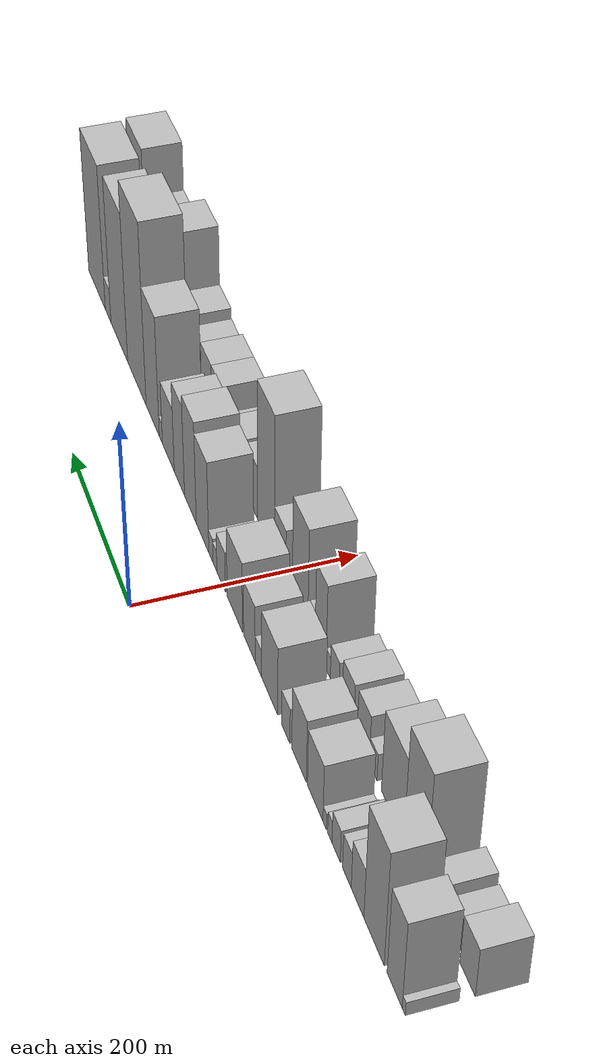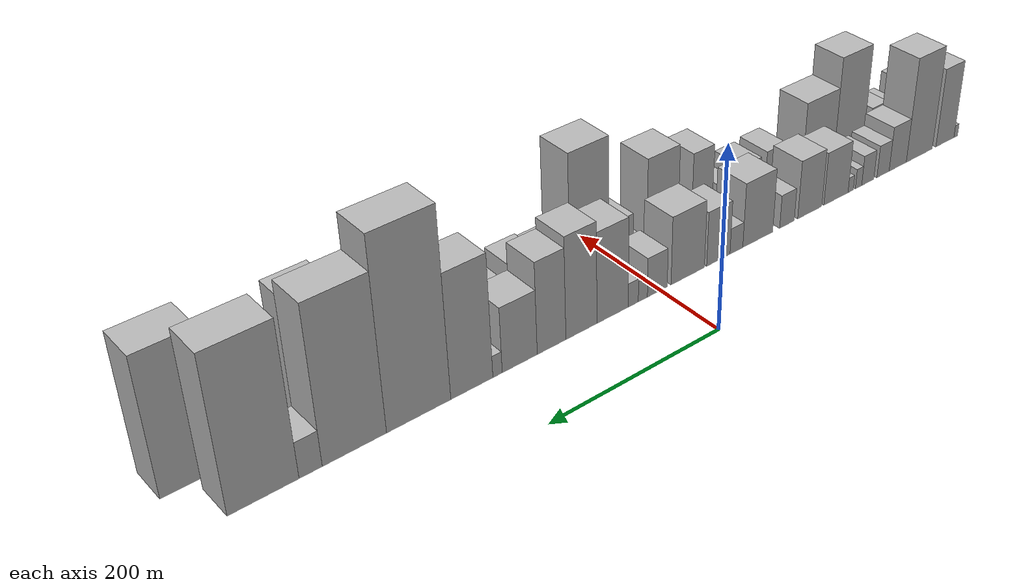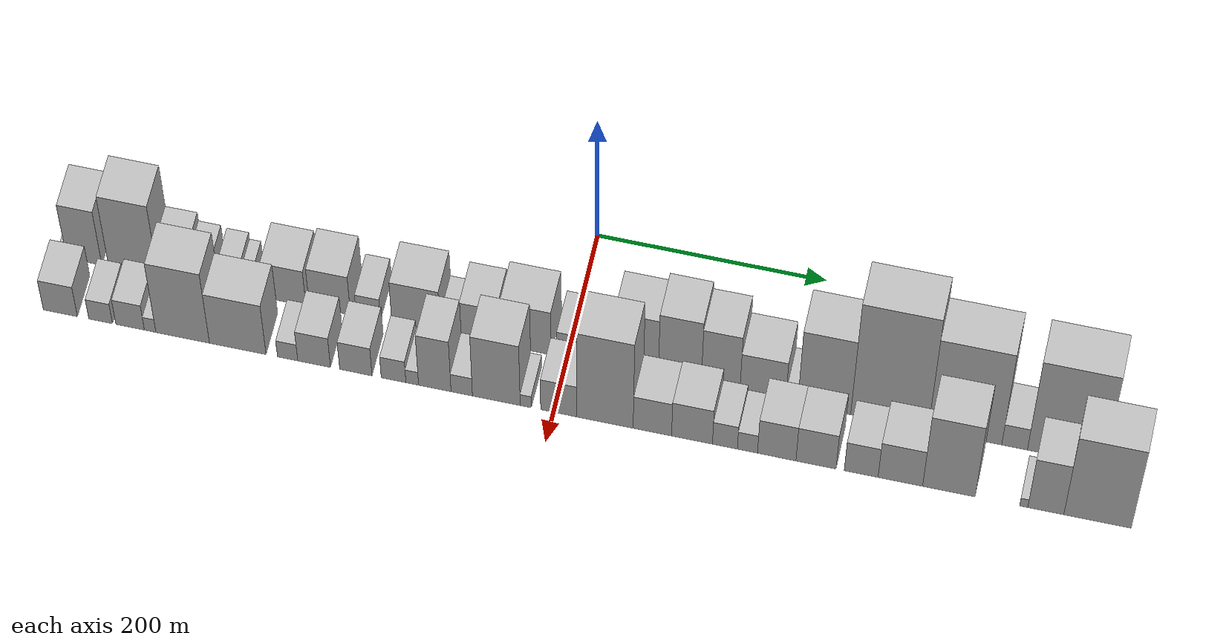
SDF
<sdf version="1.6">
 <world name="default">
  <scene>
   <sky><clouds><speed>12</speed></clouds></sky>
   <ambient>0.4 0.4 0.4 1</ambient>
   <background>0.7 0.7 0.7 1</background>
   <shadows>1</shadows>
  </scene>
  <gravity>0 0 -9.8066</gravity>
  <magnetic_field>6e-06 2.3e-05 -4.2e-05</magnetic_field>
  <physics default="0" name="default_physics" type="ode">
   <ode>
    <solver>
     <type>quick</type>
     <iters>10</iters>
     <sor>1.0</sor>
     <use_dynamic_moi_rescaling>0</use_dynamic_moi_rescaling>
    </solver>
    <constraints>
     <cfm>0</cfm>
     <erp>0.2</erp>
     <contact_max_correcting_vel>100</contact_max_correcting_vel>
     <contact_surface_layer>0.001</contact_surface_layer>
    </constraints>
   </ode>
   <max_step_size>0.004</max_step_size>
   <real_time_factor>1</real_time_factor>
   <real_time_update_rate>250</real_time_update_rate>
  </physics>
  <light name="sun" type="directional">
   <pose>0 0 10 0 0 0</pose>
   <diffuse>0.8 0.8 0.8 1</diffuse>
   <specular>0.2 0.2 0.2 1</specular>
   <attenuation>
    <range>1000</range>
    <constant>0.9</constant>
    <linear>0.01</linear>
    <quadratic>0.001</quadratic>
   </attenuation>
   <direction>-0.5 0.1 -0.9</direction>
  </light>
  <model name="building_1">
   <static>1</static>
   <pose>100.0000 -440.8172 0 0.000000 0.000000 0.000000</pose>
   <link name="link">
    <pose>0 0 7.50 0 0 0</pose>
    <collision name="collision"><geometry><box><size>40.0000 6.3657 15.0000</size></box></geometry></collision>
    <visual name="visual">
     <cast_shadows>0</cast_shadows>
     <geometry><box><size>40.0000 6.3657 15.0000</size></box></geometry>
     <material>
      <script>
       <uri>model://HANNAS_wall/materials/scripts</uri>
       <uri>model://HANNAS_wall/materials/textures</uri>
       <name>vrc/HANNAS_wall</name>
      </script>
     </material>
    </visual>
   </link>
  </model>
  <model name="building_2">
   <static>1</static>
   <pose>100.0000 -422.1031 0 0.000000 0.000000 0.000000</pose>
   <link name="link">
    <pose>0 0 48.00 0 0 0</pose>
    <collision name="collision"><geometry><box><size>40.0000 31.0623 96.0000</size></box></geometry></collision>
    <visual name="visual">
     <cast_shadows>0</cast_shadows>
     <geometry><box><size>40.0000 31.0623 96.0000</size></box></geometry>
     <material>
      <script>
       <uri>model://HANNAS_wall/materials/scripts</uri>
       <uri>model://HANNAS_wall/materials/textures</uri>
       <name>vrc/HANNAS_wall</name>
      </script>
     </material>
    </visual>
   </link>
  </model>
  <model name="building_3">
   <static>1</static>
   <pose>100.0000 -378.8584 0 0.000000 0.000000 0.000000</pose>
   <link name="link">
    <pose>0 0 63.00 0 0 0</pose>
    <collision name="collision"><geometry><box><size>40.0000 43.4272 126.0000</size></box></geometry></collision>
    <visual name="visual">
     <cast_shadows>0</cast_shadows>
     <geometry><box><size>40.0000 43.4272 126.0000</size></box></geometry>
     <material>
      <script>
       <uri>model://HANNAS_wall/materials/scripts</uri>
       <uri>model://HANNAS_wall/materials/textures</uri>
       <name>vrc/HANNAS_wall</name>
      </script>
     </material>
    </visual>
   </link>
  </model>
  <model name="building_4">
   <static>1</static>
   <pose>100.0000 -343.1424 0 0.000000 0.000000 0.000000</pose>
   <link name="link">
    <pose>0 0 27.00 0 0 0</pose>
    <collision name="collision"><geometry><box><size>40.0000 28.0048 54.0000</size></box></geometry></collision>
    <visual name="visual">
     <cast_shadows>0</cast_shadows>
     <geometry><box><size>40.0000 28.0048 54.0000</size></box></geometry>
     <material>
      <script>
       <uri>model://HANNAS_wall/materials/scripts</uri>
       <uri>model://HANNAS_wall/materials/textures</uri>
       <name>vrc/HANNAS_wall</name>
      </script>
     </material>
    </visual>
   </link>
  </model>
  <model name="building_5">
   <static>1</static>
   <pose>100.0000 -319.3504 0 0.000000 0.000000 0.000000</pose>
   <link name="link">
    <pose>0 0 19.50 0 0 0</pose>
    <collision name="collision"><geometry><box><size>40.0000 19.5792 39.0000</size></box></geometry></collision>
    <visual name="visual">
     <cast_shadows>0</cast_shadows>
     <geometry><box><size>40.0000 19.5792 39.0000</size></box></geometry>
     <material>
      <script>
       <uri>model://HANNAS_wall/materials/scripts</uri>
       <uri>model://HANNAS_wall/materials/textures</uri>
       <name>vrc/HANNAS_wall</name>
      </script>
     </material>
    </visual>
   </link>
  </model>
  <model name="building_6">
   <static>1</static>
   <pose>100.0000 -294.9732 0 0.000000 0.000000 0.000000</pose>
   <link name="link">
    <pose>0 0 18.00 0 0 0</pose>
    <collision name="collision"><geometry><box><size>40.0000 19.1752 36.0000</size></box></geometry></collision>
    <visual name="visual">
     <cast_shadows>0</cast_shadows>
     <geometry><box><size>40.0000 19.1752 36.0000</size></box></geometry>
     <material>
      <script>
       <uri>model://HANNAS_wall/materials/scripts</uri>
       <uri>model://HANNAS_wall/materials/textures</uri>
       <name>vrc/HANNAS_wall</name>
      </script>
     </material>
    </visual>
   </link>
  </model>
  <model name="building_7">
   <static>1</static>
   <pose>100.0000 -280.4078 0 0.000000 0.000000 0.000000</pose>
   <link name="link">
    <pose>0 0 12.00 0 0 0</pose>
    <collision name="collision"><geometry><box><size>40.0000 9.9555 24.0000</size></box></geometry></collision>
    <visual name="visual">
     <cast_shadows>0</cast_shadows>
     <geometry><box><size>40.0000 9.9555 24.0000</size></box></geometry>
     <material>
      <script>
       <uri>model://HANNAS_wall/materials/scripts</uri>
       <uri>model://HANNAS_wall/materials/textures</uri>
       <name>vrc/HANNAS_wall</name>
      </script>
     </material>
    </visual>
   </link>
  </model>
  <model name="building_8">
   <static>1</static>
   <pose>100.0000 -268.2768 0 0.000000 0.000000 0.000000</pose>
   <link name="link">
    <pose>0 0 9.00 0 0 0</pose>
    <collision name="collision"><geometry><box><size>40.0000 8.3066 18.0000</size></box></geometry></collision>
    <visual name="visual">
     <cast_shadows>0</cast_shadows>
     <geometry><box><size>40.0000 8.3066 18.0000</size></box></geometry>
     <material>
      <script>
       <uri>model://HANNAS_wall/materials/scripts</uri>
       <uri>model://HANNAS_wall/materials/textures</uri>
       <name>vrc/HANNAS_wall</name>
      </script>
     </material>
    </visual>
   </link>
  </model>
  <model name="building_9">
   <static>1</static>
   <pose>100.0000 -245.6055 0 0.000000 0.000000 0.000000</pose>
   <link name="link">
    <pose>0 0 31.50 0 0 0</pose>
    <collision name="collision"><geometry><box><size>40.0000 37.0360 63.0000</size></box></geometry></collision>
    <visual name="visual">
     <cast_shadows>0</cast_shadows>
     <geometry><box><size>40.0000 37.0360 63.0000</size></box></geometry>
     <material>
      <script>
       <uri>model://HANNAS_wall/materials/scripts</uri>
       <uri>model://HANNAS_wall/materials/textures</uri>
       <name>vrc/HANNAS_wall</name>
      </script>
     </material>
    </visual>
   </link>
  </model>
  <model name="building_10">
   <static>1</static>
   <pose>100.0000 -206.1248 0 0.000000 0.000000 0.000000</pose>
   <link name="link">
    <pose>0 0 34.50 0 0 0</pose>
    <collision name="collision"><geometry><box><size>40.0000 35.9254 69.0000</size></box></geometry></collision>
    <visual name="visual">
     <cast_shadows>0</cast_shadows>
     <geometry><box><size>40.0000 35.9254 69.0000</size></box></geometry>
     <material>
      <script>
       <uri>model://HANNAS_wall/materials/scripts</uri>
       <uri>model://HANNAS_wall/materials/textures</uri>
       <name>vrc/HANNAS_wall</name>
      </script>
     </material>
    </visual>
   </link>
  </model>
  <model name="building_11">
   <static>1</static>
   <pose>100.0000 -172.5759 0 0.000000 0.000000 0.000000</pose>
   <link name="link">
    <pose>0 0 19.50 0 0 0</pose>
    <collision name="collision"><geometry><box><size>40.0000 21.1724 39.0000</size></box></geometry></collision>
    <visual name="visual">
     <cast_shadows>0</cast_shadows>
     <geometry><box><size>40.0000 21.1724 39.0000</size></box></geometry>
     <material>
      <script>
       <uri>model://HANNAS_wall/materials/scripts</uri>
       <uri>model://HANNAS_wall/materials/textures</uri>
       <name>vrc/HANNAS_wall</name>
      </script>
     </material>
    </visual>
   </link>
  </model>
  <model name="building_12">
   <static>1</static>
   <pose>100.0000 -130.8873 0 0.000000 0.000000 0.000000</pose>
   <link name="link">
    <pose>0 0 37.50 0 0 0</pose>
    <collision name="collision"><geometry><box><size>40.0000 42.2047 75.0000</size></box></geometry></collision>
    <visual name="visual">
     <cast_shadows>0</cast_shadows>
     <geometry><box><size>40.0000 42.2047 75.0000</size></box></geometry>
     <material>
      <script>
       <uri>model://HANNAS_wall/materials/scripts</uri>
       <uri>model://HANNAS_wall/materials/textures</uri>
       <name>vrc/HANNAS_wall</name>
      </script>
     </material>
    </visual>
   </link>
  </model>
  <model name="building_13">
   <static>1</static>
   <pose>100.0000 -100.9438 0 0.000000 0.000000 0.000000</pose>
   <link name="link">
    <pose>0 0 15.00 0 0 0</pose>
    <collision name="collision"><geometry><box><size>40.0000 17.6824 30.0000</size></box></geometry></collision>
    <visual name="visual">
     <cast_shadows>0</cast_shadows>
     <geometry><box><size>40.0000 17.6824 30.0000</size></box></geometry>
     <material>
      <script>
       <uri>model://HANNAS_wall/materials/scripts</uri>
       <uri>model://HANNAS_wall/materials/textures</uri>
       <name>vrc/HANNAS_wall</name>
      </script>
     </material>
    </visual>
   </link>
  </model>
  <model name="building_14">
   <static>1</static>
   <pose>100.0000 -76.2598 0 0.000000 0.000000 0.000000</pose>
   <link name="link">
    <pose>0 0 31.50 0 0 0</pose>
    <collision name="collision"><geometry><box><size>40.0000 31.6857 63.0000</size></box></geometry></collision>
    <visual name="visual">
     <cast_shadows>0</cast_shadows>
     <geometry><box><size>40.0000 31.6857 63.0000</size></box></geometry>
     <material>
      <script>
       <uri>model://HANNAS_wall/materials/scripts</uri>
       <uri>model://HANNAS_wall/materials/textures</uri>
       <name>vrc/HANNAS_wall</name>
      </script>
     </material>
    </visual>
   </link>
  </model>
  <model name="building_15">
   <static>1</static>
   <pose>100.0000 -35.4703 0 0.000000 0.000000 0.000000</pose>
   <link name="link">
    <pose>0 0 39.00 0 0 0</pose>
    <collision name="collision"><geometry><box><size>40.0000 43.8933 78.0000</size></box></geometry></collision>
    <visual name="visual">
     <cast_shadows>0</cast_shadows>
     <geometry><box><size>40.0000 43.8933 78.0000</size></box></geometry>
     <material>
      <script>
       <uri>model://HANNAS_wall/materials/scripts</uri>
       <uri>model://HANNAS_wall/materials/textures</uri>
       <name>vrc/HANNAS_wall</name>
      </script>
     </material>
    </visual>
   </link>
  </model>
  <model name="building_16">
   <static>1</static>
   <pose>100.0000 4.1361 0 0.000000 0.000000 0.000000</pose>
   <link name="link">
    <pose>0 0 22.50 0 0 0</pose>
    <collision name="collision"><geometry><box><size>40.0000 25.3194 45.0000</size></box></geometry></collision>
    <visual name="visual">
     <cast_shadows>0</cast_shadows>
     <geometry><box><size>40.0000 25.3194 45.0000</size></box></geometry>
     <material>
      <script>
       <uri>model://HANNAS_wall/materials/scripts</uri>
       <uri>model://HANNAS_wall/materials/textures</uri>
       <name>vrc/HANNAS_wall</name>
      </script>
     </material>
    </visual>
   </link>
  </model>
  <model name="building_17">
   <static>1</static>
   <pose>100.0000 22.5497 0 0.000000 0.000000 0.000000</pose>
   <link name="link">
    <pose>0 0 12.00 0 0 0</pose>
    <collision name="collision"><geometry><box><size>40.0000 11.5078 24.0000</size></box></geometry></collision>
    <visual name="visual">
     <cast_shadows>0</cast_shadows>
     <geometry><box><size>40.0000 11.5078 24.0000</size></box></geometry>
     <material>
      <script>
       <uri>model://HANNAS_wall/materials/scripts</uri>
       <uri>model://HANNAS_wall/materials/textures</uri>
       <name>vrc/HANNAS_wall</name>
      </script>
     </material>
    </visual>
   </link>
  </model>
  <model name="building_18">
   <static>1</static>
   <pose>100.0000 34.5502 0 0.000000 0.000000 0.000000</pose>
   <link name="link">
    <pose>0 0 13.50 0 0 0</pose>
    <collision name="collision"><geometry><box><size>40.0000 12.4933 27.0000</size></box></geometry></collision>
    <visual name="visual">
     <cast_shadows>0</cast_shadows>
     <geometry><box><size>40.0000 12.4933 27.0000</size></box></geometry>
     <material>
      <script>
       <uri>model://HANNAS_wall/materials/scripts</uri>
       <uri>model://HANNAS_wall/materials/textures</uri>
       <name>vrc/HANNAS_wall</name>
      </script>
     </material>
    </visual>
   </link>
  </model>
  <model name="building_19">
   <static>1</static>
   <pose>100.0000 59.9908 0 0.000000 0.000000 0.000000</pose>
   <link name="link">
    <pose>0 0 51.00 0 0 0</pose>
    <collision name="collision"><geometry><box><size>40.0000 38.3878 102.0000</size></box></geometry></collision>
    <visual name="visual">
     <cast_shadows>0</cast_shadows>
     <geometry><box><size>40.0000 38.3878 102.0000</size></box></geometry>
     <material>
      <script>
       <uri>model://HANNAS_wall/materials/scripts</uri>
       <uri>model://HANNAS_wall/materials/textures</uri>
       <name>vrc/HANNAS_wall</name>
      </script>
     </material>
    </visual>
   </link>
  </model>
  <model name="building_20">
   <static>1</static>
   <pose>100.0000 97.6864 0 0.000000 0.000000 0.000000</pose>
   <link name="link">
    <pose>0 0 57.00 0 0 0</pose>
    <collision name="collision"><geometry><box><size>40.0000 37.0036 114.0000</size></box></geometry></collision>
    <visual name="visual">
     <cast_shadows>0</cast_shadows>
     <geometry><box><size>40.0000 37.0036 114.0000</size></box></geometry>
     <material>
      <script>
       <uri>model://HANNAS_wall/materials/scripts</uri>
       <uri>model://HANNAS_wall/materials/textures</uri>
       <name>vrc/HANNAS_wall</name>
      </script>
     </material>
    </visual>
   </link>
  </model>
  <model name="building_21">
   <static>1</static>
   <pose>100.0000 132.8006 0 0.000000 0.000000 0.000000</pose>
   <link name="link">
    <pose>0 0 51.00 0 0 0</pose>
    <collision name="collision"><geometry><box><size>40.0000 33.2248 102.0000</size></box></geometry></collision>
    <visual name="visual">
     <cast_shadows>0</cast_shadows>
     <geometry><box><size>40.0000 33.2248 102.0000</size></box></geometry>
     <material>
      <script>
       <uri>model://HANNAS_wall/materials/scripts</uri>
       <uri>model://HANNAS_wall/materials/textures</uri>
       <name>vrc/HANNAS_wall</name>
      </script>
     </material>
    </visual>
   </link>
  </model>
  <model name="building_22">
   <static>1</static>
   <pose>100.0000 169.1335 0 0.000000 0.000000 0.000000</pose>
   <link name="link">
    <pose>0 0 36.00 0 0 0</pose>
    <collision name="collision"><geometry><box><size>40.0000 39.4410 72.0000</size></box></geometry></collision>
    <visual name="visual">
     <cast_shadows>0</cast_shadows>
     <geometry><box><size>40.0000 39.4410 72.0000</size></box></geometry>
     <material>
      <script>
       <uri>model://HANNAS_wall/materials/scripts</uri>
       <uri>model://HANNAS_wall/materials/textures</uri>
       <name>vrc/HANNAS_wall</name>
      </script>
     </material>
    </visual>
   </link>
  </model>
  <model name="building_23">
   <static>1</static>
   <pose>100.0000 194.0053 0 0.000000 0.000000 0.000000</pose>
   <link name="link">
    <pose>0 0 12.00 0 0 0</pose>
    <collision name="collision"><geometry><box><size>40.0000 10.3026 24.0000</size></box></geometry></collision>
    <visual name="visual">
     <cast_shadows>0</cast_shadows>
     <geometry><box><size>40.0000 10.3026 24.0000</size></box></geometry>
     <material>
      <script>
       <uri>model://HANNAS_wall/materials/scripts</uri>
       <uri>model://HANNAS_wall/materials/textures</uri>
       <name>vrc/HANNAS_wall</name>
      </script>
     </material>
    </visual>
   </link>
  </model>
  <model name="building_24">
   <static>1</static>
   <pose>100.0000 221.8705 0 0.000000 0.000000 0.000000</pose>
   <link name="link">
    <pose>0 0 67.50 0 0 0</pose>
    <collision name="collision"><geometry><box><size>40.0000 45.4277 135.0000</size></box></geometry></collision>
    <visual name="visual">
     <cast_shadows>0</cast_shadows>
     <geometry><box><size>40.0000 45.4277 135.0000</size></box></geometry>
     <material>
      <script>
       <uri>model://HANNAS_wall/materials/scripts</uri>
       <uri>model://HANNAS_wall/materials/textures</uri>
       <name>vrc/HANNAS_wall</name>
      </script>
     </material>
    </visual>
   </link>
  </model>
  <model name="building_25">
   <static>1</static>
   <pose>100.0000 277.7084 0 0.000000 0.000000 0.000000</pose>
   <link name="link">
    <pose>0 0 102.00 0 0 0</pose>
    <collision name="collision"><geometry><box><size>40.0000 66.2481 204.0000</size></box></geometry></collision>
    <visual name="visual">
     <cast_shadows>0</cast_shadows>
     <geometry><box><size>40.0000 66.2481 204.0000</size></box></geometry>
     <material>
      <script>
       <uri>model://HANNAS_wall/materials/scripts</uri>
       <uri>model://HANNAS_wall/materials/textures</uri>
       <name>vrc/HANNAS_wall</name>
      </script>
     </material>
    </visual>
   </link>
  </model>
  <model name="building_26">
   <static>1</static>
   <pose>100.0000 342.2260 0 0.000000 0.000000 0.000000</pose>
   <link name="link">
    <pose>0 0 84.00 0 0 0</pose>
    <collision name="collision"><geometry><box><size>40.0000 62.7872 168.0000</size></box></geometry></collision>
    <visual name="visual">
     <cast_shadows>0</cast_shadows>
     <geometry><box><size>40.0000 62.7872 168.0000</size></box></geometry>
     <material>
      <script>
       <uri>model://HANNAS_wall/materials/scripts</uri>
       <uri>model://HANNAS_wall/materials/textures</uri>
       <name>vrc/HANNAS_wall</name>
      </script>
     </material>
    </visual>
   </link>
  </model>
  <model name="building_27">
   <static>1</static>
   <pose>100.0000 384.5521 0 0.000000 0.000000 0.000000</pose>
   <link name="link">
    <pose>0 0 19.50 0 0 0</pose>
    <collision name="collision"><geometry><box><size>40.0000 21.8649 39.0000</size></box></geometry></collision>
    <visual name="visual">
     <cast_shadows>0</cast_shadows>
     <geometry><box><size>40.0000 21.8649 39.0000</size></box></geometry>
     <material>
      <script>
       <uri>model://HANNAS_wall/materials/scripts</uri>
       <uri>model://HANNAS_wall/materials/textures</uri>
       <name>vrc/HANNAS_wall</name>
      </script>
     </material>
    </visual>
   </link>
  </model>
  <model name="building_28">
   <static>1</static>
   <pose>100.0000 428.1646 0 0.000000 0.000000 0.000000</pose>
   <link name="link">
    <pose>0 0 82.50 0 0 0</pose>
    <collision name="collision"><geometry><box><size>40.0000 65.3601 165.0000</size></box></geometry></collision>
    <visual name="visual">
     <cast_shadows>0</cast_shadows>
     <geometry><box><size>40.0000 65.3601 165.0000</size></box></geometry>
     <material>
      <script>
       <uri>model://HANNAS_wall/materials/scripts</uri>
       <uri>model://HANNAS_wall/materials/textures</uri>
       <name>vrc/HANNAS_wall</name>
      </script>
     </material>
    </visual>
   </link>
  </model>
  <model name="building_29">
   <static>1</static>
   <pose>152.0000 -429.0302 0 0.000000 0.000000 0.000000</pose>
   <link name="link">
    <pose>0 0 27.00 0 0 0</pose>
    <collision name="collision"><geometry><box><size>40.0000 29.9396 54.0000</size></box></geometry></collision>
    <visual name="visual">
     <cast_shadows>0</cast_shadows>
     <geometry><box><size>40.0000 29.9396 54.0000</size></box></geometry>
     <material>
      <script>
       <uri>model://HANNAS_wall/materials/scripts</uri>
       <uri>model://HANNAS_wall/materials/textures</uri>
       <name>vrc/HANNAS_wall</name>
      </script>
     </material>
    </visual>
   </link>
  </model>
  <model name="building_30">
   <static>1</static>
   <pose>152.0000 -393.6898 0 0.000000 0.000000 0.000000</pose>
   <link name="link">
    <pose>0 0 18.00 0 0 0</pose>
    <collision name="collision"><geometry><box><size>40.0000 20.7413 36.0000</size></box></geometry></collision>
    <visual name="visual">
     <cast_shadows>0</cast_shadows>
     <geometry><box><size>40.0000 20.7413 36.0000</size></box></geometry>
     <material>
      <script>
       <uri>model://HANNAS_wall/materials/scripts</uri>
       <uri>model://HANNAS_wall/materials/textures</uri>
       <name>vrc/HANNAS_wall</name>
      </script>
     </material>
    </visual>
   </link>
  </model>
  <model name="building_31">
   <static>1</static>
   <pose>152.0000 -367.8227 0 0.000000 0.000000 0.000000</pose>
   <link name="link">
    <pose>0 0 22.50 0 0 0</pose>
    <collision name="collision"><geometry><box><size>40.0000 24.9930 45.0000</size></box></geometry></collision>
    <visual name="visual">
     <cast_shadows>0</cast_shadows>
     <geometry><box><size>40.0000 24.9930 45.0000</size></box></geometry>
     <material>
      <script>
       <uri>model://HANNAS_wall/materials/scripts</uri>
       <uri>model://HANNAS_wall/materials/textures</uri>
       <name>vrc/HANNAS_wall</name>
      </script>
     </material>
    </visual>
   </link>
  </model>
  <model name="building_32">
   <static>1</static>
   <pose>152.0000 -350.2837 0 0.000000 0.000000 0.000000</pose>
   <link name="link">
    <pose>0 0 12.00 0 0 0</pose>
    <collision name="collision"><geometry><box><size>40.0000 10.0849 24.0000</size></box></geometry></collision>
    <visual name="visual">
     <cast_shadows>0</cast_shadows>
     <geometry><box><size>40.0000 10.0849 24.0000</size></box></geometry>
     <material>
      <script>
       <uri>model://HANNAS_wall/materials/scripts</uri>
       <uri>model://HANNAS_wall/materials/textures</uri>
       <name>vrc/HANNAS_wall</name>
      </script>
     </material>
    </visual>
   </link>
  </model>
  <model name="building_33">
   <static>1</static>
   <pose>152.0000 -321.8135 0 0.000000 0.000000 0.000000</pose>
   <link name="link">
    <pose>0 0 63.00 0 0 0</pose>
    <collision name="collision"><geometry><box><size>40.0000 46.8557 126.0000</size></box></geometry></collision>
    <visual name="visual">
     <cast_shadows>0</cast_shadows>
     <geometry><box><size>40.0000 46.8557 126.0000</size></box></geometry>
     <material>
      <script>
       <uri>model://HANNAS_wall/materials/scripts</uri>
       <uri>model://HANNAS_wall/materials/textures</uri>
       <name>vrc/HANNAS_wall</name>
      </script>
     </material>
    </visual>
   </link>
  </model>
  <model name="building_34">
   <static>1</static>
   <pose>152.0000 -273.6697 0 0.000000 0.000000 0.000000</pose>
   <link name="link">
    <pose>0 0 45.00 0 0 0</pose>
    <collision name="collision"><geometry><box><size>40.0000 49.4318 90.0000</size></box></geometry></collision>
    <visual name="visual">
     <cast_shadows>0</cast_shadows>
     <geometry><box><size>40.0000 49.4318 90.0000</size></box></geometry>
     <material>
      <script>
       <uri>model://HANNAS_wall/materials/scripts</uri>
       <uri>model://HANNAS_wall/materials/textures</uri>
       <name>vrc/HANNAS_wall</name>
      </script>
     </material>
    </visual>
   </link>
  </model>
  <model name="building_35">
   <static>1</static>
   <pose>152.0000 -230.1338 0 0.000000 0.000000 0.000000</pose>
   <link name="link">
    <pose>0 0 15.00 0 0 0</pose>
    <collision name="collision"><geometry><box><size>40.0000 17.6401 30.0000</size></box></geometry></collision>
    <visual name="visual">
     <cast_shadows>0</cast_shadows>
     <geometry><box><size>40.0000 17.6401 30.0000</size></box></geometry>
     <material>
      <script>
       <uri>model://HANNAS_wall/materials/scripts</uri>
       <uri>model://HANNAS_wall/materials/textures</uri>
       <name>vrc/HANNAS_wall</name>
      </script>
     </material>
    </visual>
   </link>
  </model>
  <model name="building_36">
   <static>1</static>
   <pose>152.0000 -207.0645 0 0.000000 0.000000 0.000000</pose>
   <link name="link">
    <pose>0 0 27.00 0 0 0</pose>
    <collision name="collision"><geometry><box><size>40.0000 28.4986 54.0000</size></box></geometry></collision>
    <visual name="visual">
     <cast_shadows>0</cast_shadows>
     <geometry><box><size>40.0000 28.4986 54.0000</size></box></geometry>
     <material>
      <script>
       <uri>model://HANNAS_wall/materials/scripts</uri>
       <uri>model://HANNAS_wall/materials/textures</uri>
       <name>vrc/HANNAS_wall</name>
      </script>
     </material>
    </visual>
   </link>
  </model>
  <model name="building_37">
   <static>1</static>
   <pose>152.0000 -170.7764 0 0.000000 0.000000 0.000000</pose>
   <link name="link">
    <pose>0 0 25.50 0 0 0</pose>
    <collision name="collision"><geometry><box><size>40.0000 28.0775 51.0000</size></box></geometry></collision>
    <visual name="visual">
     <cast_shadows>0</cast_shadows>
     <geometry><box><size>40.0000 28.0775 51.0000</size></box></geometry>
     <material>
      <script>
       <uri>model://HANNAS_wall/materials/scripts</uri>
       <uri>model://HANNAS_wall/materials/textures</uri>
       <name>vrc/HANNAS_wall</name>
      </script>
     </material>
    </visual>
   </link>
  </model>
  <model name="building_38">
   <static>1</static>
   <pose>152.0000 -138.0554 0 0.000000 0.000000 0.000000</pose>
   <link name="link">
    <pose>0 0 19.50 0 0 0</pose>
    <collision name="collision"><geometry><box><size>40.0000 21.3645 39.0000</size></box></geometry></collision>
    <visual name="visual">
     <cast_shadows>0</cast_shadows>
     <geometry><box><size>40.0000 21.3645 39.0000</size></box></geometry>
     <material>
      <script>
       <uri>model://HANNAS_wall/materials/scripts</uri>
       <uri>model://HANNAS_wall/materials/textures</uri>
       <name>vrc/HANNAS_wall</name>
      </script>
     </material>
    </visual>
   </link>
  </model>
  <model name="building_39">
   <static>1</static>
   <pose>152.0000 -121.8626 0 0.000000 0.000000 0.000000</pose>
   <link name="link">
    <pose>0 0 12.00 0 0 0</pose>
    <collision name="collision"><geometry><box><size>40.0000 11.0212 24.0000</size></box></geometry></collision>
    <visual name="visual">
     <cast_shadows>0</cast_shadows>
     <geometry><box><size>40.0000 11.0212 24.0000</size></box></geometry>
     <material>
      <script>
       <uri>model://HANNAS_wall/materials/scripts</uri>
       <uri>model://HANNAS_wall/materials/textures</uri>
       <name>vrc/HANNAS_wall</name>
      </script>
     </material>
    </visual>
   </link>
  </model>
  <model name="building_40">
   <static>1</static>
   <pose>152.0000 -102.2980 0 0.000000 0.000000 0.000000</pose>
   <link name="link">
    <pose>0 0 46.50 0 0 0</pose>
    <collision name="collision"><geometry><box><size>40.0000 28.1080 93.0000</size></box></geometry></collision>
    <visual name="visual">
     <cast_shadows>0</cast_shadows>
     <geometry><box><size>40.0000 28.1080 93.0000</size></box></geometry>
     <material>
      <script>
       <uri>model://HANNAS_wall/materials/scripts</uri>
       <uri>model://HANNAS_wall/materials/textures</uri>
       <name>vrc/HANNAS_wall</name>
      </script>
     </material>
    </visual>
   </link>
  </model>
  <model name="building_41">
   <static>1</static>
   <pose>152.0000 -78.9847 0 0.000000 0.000000 0.000000</pose>
   <link name="link">
    <pose>0 0 16.50 0 0 0</pose>
    <collision name="collision"><geometry><box><size>40.0000 18.5187 33.0000</size></box></geometry></collision>
    <visual name="visual">
     <cast_shadows>0</cast_shadows>
     <geometry><box><size>40.0000 18.5187 33.0000</size></box></geometry>
     <material>
      <script>
       <uri>model://HANNAS_wall/materials/scripts</uri>
       <uri>model://HANNAS_wall/materials/textures</uri>
       <name>vrc/HANNAS_wall</name>
      </script>
     </material>
    </visual>
   </link>
  </model>
  <model name="building_42">
   <static>1</static>
   <pose>152.0000 -49.0863 0 0.000000 0.000000 0.000000</pose>
   <link name="link">
    <pose>0 0 55.50 0 0 0</pose>
    <collision name="collision"><geometry><box><size>40.0000 41.2781 111.0000</size></box></geometry></collision>
    <visual name="visual">
     <cast_shadows>0</cast_shadows>
     <geometry><box><size>40.0000 41.2781 111.0000</size></box></geometry>
     <material>
      <script>
       <uri>model://HANNAS_wall/materials/scripts</uri>
       <uri>model://HANNAS_wall/materials/textures</uri>
       <name>vrc/HANNAS_wall</name>
      </script>
     </material>
    </visual>
   </link>
  </model>
  <model name="building_43">
   <static>1</static>
   <pose>152.0000 -23.6042 0 0.000000 0.000000 0.000000</pose>
   <link name="link">
    <pose>0 0 10.50 0 0 0</pose>
    <collision name="collision"><geometry><box><size>40.0000 9.6861 21.0000</size></box></geometry></collision>
    <visual name="visual">
     <cast_shadows>0</cast_shadows>
     <geometry><box><size>40.0000 9.6861 21.0000</size></box></geometry>
     <material>
      <script>
       <uri>model://HANNAS_wall/materials/scripts</uri>
       <uri>model://HANNAS_wall/materials/textures</uri>
       <name>vrc/HANNAS_wall</name>
      </script>
     </material>
    </visual>
   </link>
  </model>
  <model name="building_44">
   <static>1</static>
   <pose>152.0000 4.8631 0 0.000000 0.000000 0.000000</pose>
   <link name="link">
    <pose>0 0 28.50 0 0 0</pose>
    <collision name="collision"><geometry><box><size>40.0000 31.2484 57.0000</size></box></geometry></collision>
    <visual name="visual">
     <cast_shadows>0</cast_shadows>
     <geometry><box><size>40.0000 31.2484 57.0000</size></box></geometry>
     <material>
      <script>
       <uri>model://HANNAS_wall/materials/scripts</uri>
       <uri>model://HANNAS_wall/materials/textures</uri>
       <name>vrc/HANNAS_wall</name>
      </script>
     </material>
    </visual>
   </link>
  </model>
  <model name="building_45">
   <static>1</static>
   <pose>152.0000 44.6449 0 0.000000 0.000000 0.000000</pose>
   <link name="link">
    <pose>0 0 78.00 0 0 0</pose>
    <collision name="collision"><geometry><box><size>40.0000 48.3152 156.0000</size></box></geometry></collision>
    <visual name="visual">
     <cast_shadows>0</cast_shadows>
     <geometry><box><size>40.0000 48.3152 156.0000</size></box></geometry>
     <material>
      <script>
       <uri>model://HANNAS_wall/materials/scripts</uri>
       <uri>model://HANNAS_wall/materials/textures</uri>
       <name>vrc/HANNAS_wall</name>
      </script>
     </material>
    </visual>
   </link>
  </model>
  <model name="building_46">
   <static>1</static>
   <pose>152.0000 85.3017 0 0.000000 0.000000 0.000000</pose>
   <link name="link">
    <pose>0 0 30.00 0 0 0</pose>
    <collision name="collision"><geometry><box><size>40.0000 32.9986 60.0000</size></box></geometry></collision>
    <visual name="visual">
     <cast_shadows>0</cast_shadows>
     <geometry><box><size>40.0000 32.9986 60.0000</size></box></geometry>
     <material>
      <script>
       <uri>model://HANNAS_wall/materials/scripts</uri>
       <uri>model://HANNAS_wall/materials/textures</uri>
       <name>vrc/HANNAS_wall</name>
      </script>
     </material>
    </visual>
   </link>
  </model>
  <model name="building_47">
   <static>1</static>
   <pose>152.0000 119.3151 0 0.000000 0.000000 0.000000</pose>
   <link name="link">
    <pose>0 0 31.50 0 0 0</pose>
    <collision name="collision"><geometry><box><size>40.0000 35.0281 63.0000</size></box></geometry></collision>
    <visual name="visual">
     <cast_shadows>0</cast_shadows>
     <geometry><box><size>40.0000 35.0281 63.0000</size></box></geometry>
     <material>
      <script>
       <uri>model://HANNAS_wall/materials/scripts</uri>
       <uri>model://HANNAS_wall/materials/textures</uri>
       <name>vrc/HANNAS_wall</name>
      </script>
     </material>
    </visual>
   </link>
  </model>
  <model name="building_48">
   <static>1</static>
   <pose>152.0000 147.4953 0 0.000000 0.000000 0.000000</pose>
   <link name="link">
    <pose>0 0 21.00 0 0 0</pose>
    <collision name="collision"><geometry><box><size>40.0000 21.3322 42.0000</size></box></geometry></collision>
    <visual name="visual">
     <cast_shadows>0</cast_shadows>
     <geometry><box><size>40.0000 21.3322 42.0000</size></box></geometry>
     <material>
      <script>
       <uri>model://HANNAS_wall/materials/scripts</uri>
       <uri>model://HANNAS_wall/materials/textures</uri>
       <name>vrc/HANNAS_wall</name>
      </script>
     </material>
    </visual>
   </link>
  </model>
  <model name="building_49">
   <static>1</static>
   <pose>152.0000 166.7727 0 0.000000 0.000000 0.000000</pose>
   <link name="link">
    <pose>0 0 16.50 0 0 0</pose>
    <collision name="collision"><geometry><box><size>40.0000 17.2226 33.0000</size></box></geometry></collision>
    <visual name="visual">
     <cast_shadows>0</cast_shadows>
     <geometry><box><size>40.0000 17.2226 33.0000</size></box></geometry>
     <material>
      <script>
       <uri>model://HANNAS_wall/materials/scripts</uri>
       <uri>model://HANNAS_wall/materials/textures</uri>
       <name>vrc/HANNAS_wall</name>
      </script>
     </material>
    </visual>
   </link>
  </model>
  <model name="building_50">
   <static>1</static>
   <pose>152.0000 191.8166 0 0.000000 0.000000 0.000000</pose>
   <link name="link">
    <pose>0 0 31.50 0 0 0</pose>
    <collision name="collision"><geometry><box><size>40.0000 32.8653 63.0000</size></box></geometry></collision>
    <visual name="visual">
     <cast_shadows>0</cast_shadows>
     <geometry><box><size>40.0000 32.8653 63.0000</size></box></geometry>
     <material>
      <script>
       <uri>model://HANNAS_wall/materials/scripts</uri>
       <uri>model://HANNAS_wall/materials/textures</uri>
       <name>vrc/HANNAS_wall</name>
      </script>
     </material>
    </visual>
   </link>
  </model>
  <model name="building_51">
   <static>1</static>
   <pose>152.0000 225.3458 0 0.000000 0.000000 0.000000</pose>
   <link name="link">
    <pose>0 0 31.50 0 0 0</pose>
    <collision name="collision"><geometry><box><size>40.0000 34.1930 63.0000</size></box></geometry></collision>
    <visual name="visual">
     <cast_shadows>0</cast_shadows>
     <geometry><box><size>40.0000 34.1930 63.0000</size></box></geometry>
     <material>
      <script>
       <uri>model://HANNAS_wall/materials/scripts</uri>
       <uri>model://HANNAS_wall/materials/textures</uri>
       <name>vrc/HANNAS_wall</name>
      </script>
     </material>
    </visual>
   </link>
  </model>
  <model name="building_52">
   <static>1</static>
   <pose>152.0000 263.8277 0 0.000000 0.000000 0.000000</pose>
   <link name="link">
    <pose>0 0 27.00 0 0 0</pose>
    <collision name="collision"><geometry><box><size>40.0000 28.7708 54.0000</size></box></geometry></collision>
    <visual name="visual">
     <cast_shadows>0</cast_shadows>
     <geometry><box><size>40.0000 28.7708 54.0000</size></box></geometry>
     <material>
      <script>
       <uri>model://HANNAS_wall/materials/scripts</uri>
       <uri>model://HANNAS_wall/materials/textures</uri>
       <name>vrc/HANNAS_wall</name>
      </script>
     </material>
    </visual>
   </link>
  </model>
  <model name="building_53">
   <static>1</static>
   <pose>152.0000 297.1305 0 0.000000 0.000000 0.000000</pose>
   <link name="link">
    <pose>0 0 33.00 0 0 0</pose>
    <collision name="collision"><geometry><box><size>40.0000 37.8347 66.0000</size></box></geometry></collision>
    <visual name="visual">
     <cast_shadows>0</cast_shadows>
     <geometry><box><size>40.0000 37.8347 66.0000</size></box></geometry>
     <material>
      <script>
       <uri>model://HANNAS_wall/materials/scripts</uri>
       <uri>model://HANNAS_wall/materials/textures</uri>
       <name>vrc/HANNAS_wall</name>
      </script>
     </material>
    </visual>
   </link>
  </model>
  <model name="building_54">
   <static>1</static>
   <pose>152.0000 338.3385 0 0.000000 0.000000 0.000000</pose>
   <link name="link">
    <pose>0 0 66.00 0 0 0</pose>
    <collision name="collision"><geometry><box><size>40.0000 44.5812 132.0000</size></box></geometry></collision>
    <visual name="visual">
     <cast_shadows>0</cast_shadows>
     <geometry><box><size>40.0000 44.5812 132.0000</size></box></geometry>
     <material>
      <script>
       <uri>model://HANNAS_wall/materials/scripts</uri>
       <uri>model://HANNAS_wall/materials/textures</uri>
       <name>vrc/HANNAS_wall</name>
      </script>
     </material>
    </visual>
   </link>
  </model>
  <model name="building_55">
   <static>1</static>
   <pose>152.0000 401.8735 0 0.000000 0.000000 0.000000</pose>
   <link name="link">
    <pose>0 0 7.50 0 0 0</pose>
    <collision name="collision"><geometry><box><size>40.0000 6.8296 15.0000</size></box></geometry></collision>
    <visual name="visual">
     <cast_shadows>0</cast_shadows>
     <geometry><box><size>40.0000 6.8296 15.0000</size></box></geometry>
     <material>
      <script>
       <uri>model://HANNAS_wall/materials/scripts</uri>
       <uri>model://HANNAS_wall/materials/textures</uri>
       <name>vrc/HANNAS_wall</name>
      </script>
     </material>
    </visual>
   </link>
  </model>
  <model name="building_56">
   <static>1</static>
   <pose>152.0000 420.4878 0 0.000000 0.000000 0.000000</pose>
   <link name="link">
    <pose>0 0 46.50 0 0 0</pose>
    <collision name="collision"><geometry><box><size>40.0000 30.3990 93.0000</size></box></geometry></collision>
    <visual name="visual">
     <cast_shadows>0</cast_shadows>
     <geometry><box><size>40.0000 30.3990 93.0000</size></box></geometry>
     <material>
      <script>
       <uri>model://HANNAS_wall/materials/scripts</uri>
       <uri>model://HANNAS_wall/materials/textures</uri>
       <name>vrc/HANNAS_wall</name>
      </script>
     </material>
    </visual>
   </link>
  </model>
  <model name="building_57">
   <static>1</static>
   <pose>152.0000 464.1013 0 0.000000 0.000000 0.000000</pose>
   <link name="link">
    <pose>0 0 73.50 0 0 0</pose>
    <collision name="collision"><geometry><box><size>40.0000 56.8279 147.0000</size></box></geometry></collision>
    <visual name="visual">
     <cast_shadows>0</cast_shadows>
     <geometry><box><size>40.0000 56.8279 147.0000</size></box></geometry>
     <material>
      <script>
       <uri>model://HANNAS_wall/materials/scripts</uri>
       <uri>model://HANNAS_wall/materials/textures</uri>
       <name>vrc/HANNAS_wall</name>
      </script>
     </material>
    </visual>
   </link>
  </model>
 </world>
</sdf>
